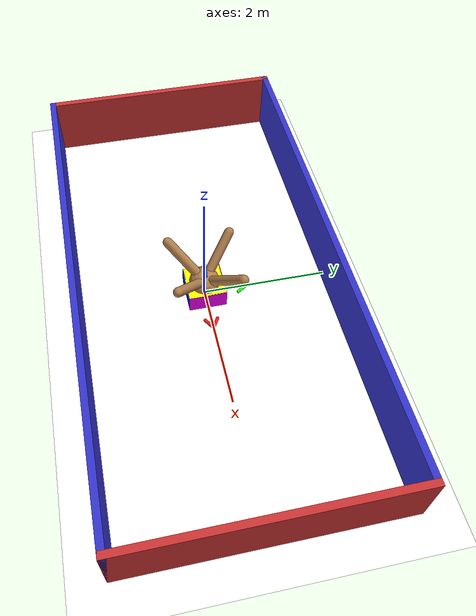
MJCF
<mujoco model="dex-gripper">
  <asset>
    <texture name="skybox" type="skybox" builtin="gradient" rgb1=".2 .3 .4" rgb2="0 0 0" width="800" height="800" mark="random" markrgb="1 1 1"/>
    <texture name="grid" type="2d" builtin="checker" rgb1=".2 .1 .2" rgb2=".3 .2 .3" width="300" height="300" mark="edge" markrgb=".3 .2 .3"/>
    <material name="grid" texture="grid" texrepeat="1 1" texuniform="true" reflectance=".2"/>
    <material name="self" rgba=".7 .5 .3 1"/>
  </asset>
  <visual>
    <headlight ambient=".4 .4 .4" diffuse=".8 .8 .8" specular="0.1 0.1 0.1"/>
    <map znear=".001"/>
    <quality shadowsize="16384"/>
  </visual>
  <compiler coordinate="local" angle="degree" inertiafromgeom="true"/>
  <option integrator="RK4" timestep="0.01"/>
  <default>
    <joint armature="1" damping="1" limited="true"/>
    <geom conaffinity="0" condim="3" density="5.0" friction="1 0.5 0.5" margin="0.01" rgba=".7 .5 .3 1"/>
  </default>
  <worldbody>
    <light cutoff="100" diffuse="1 1 1" dir="0.3 0 -1.3" directional="true" exponent="1" pos="-30 0 130" specular=".1 .1 .1"/>
    <geom conaffinity="1" condim="3" name="floor" pos="0 0 0" rgba="1 1 1 1" size="200 200 .125" type="plane" material="grid"/>
    <!-- Fixed gripper base: no root slide joints anymore -->
    <body name="0" pos="0 0 0.3" gravcomp="1">
      <camera name="track" mode="fixed" pos="0 10 5" quat="0 0 0.547 0.892"/>
      <geom pos="0 0 0" size="0.260357 0.24242 0.18115" type="ellipsoid"/>
      <!-- Arm 1: flipped upward -->
      <body name="1" pos="0 0 0" gravcomp="1">
        <joint axis="-0.707107 0.707107 0" name="1_joint" pos="0 0 0" range="-45 45" type="hinge" damping="0"/>
        <geom fromto="-0.054387 -0.057052 -0.057147 0.475851 0.499169 0.5" size="0.081419 0.081419 0.081419" type="capsule"/>
      </body>
      <!-- Arm 2: flipped upward -->
      <body name="2" pos="0 0 0" gravcomp="1">
        <joint axis="-0.707107 -0.707107 0" name="2_joint" pos="0 0 0" range="-45 45" type="hinge" damping="0"/>
        <geom fromto="0.057467 -0.057449 -0.057534 -0.499421 0.499265 0.5" size="0.076037 0.076037 0.076037" type="capsule"/>
      </body>
      <!-- Arm 3: flipped upward -->
      <body name="3" pos="0 0 0" gravcomp="1">
        <joint axis="0.707107 -0.707107 0" name="3_joint" pos="0 0 0" range="-45 45" type="hinge" damping="0"/>
        <geom fromto="0.052252 0.05227 -0.053696 -0.486549 -0.486724 0.5" size="0.078141 0.078141 0.078141" type="capsule"/>
      </body>
      <!-- Arm 4: flipped upward -->
      <body name="4" pos="0 0 0" gravcomp="1">
        <joint axis="0.707107 0.707107 0" name="4_joint" pos="0 0 0" range="-45 45" type="hinge" damping="0"/>
        <geom fromto="-0.061399 0.061389 -0.06145 0.499588 -0.499504 0.5" size="0.076 0.076 0.076" type="capsule"/>
      </body>
    </body>
    <!-- Box starts above the gripper -->
    <body name="box" pos="0 0 0">
      <freejoint name="box_joint"/>
      <!-- Top (Yellow) -->
      <geom name="box_top" type="box" pos="0 0 0.295" size="0.3 0.3 0.005" rgba="1 1 0 1" density="10" friction="2.5 0.1 0.05" contype="1" conaffinity="1"/>
      <!-- Bottom (White) -->
      <geom name="box_bottom" type="box" pos="0 0 -0.295" size="0.3 0.3 0.005" rgba="1 1 1 1" density="10" friction="2.5 0.1 0.05" contype="1" conaffinity="1"/>
      <!-- Front (Red) -->
      <geom name="box_front" type="box" pos="0 0.295 0" size="0.3 0.005 0.3" rgba="1 0 0 1" density="10" friction="2.5 0.1 0.05" contype="1" conaffinity="1"/>
      <!-- Back (Blue) -->
      <geom name="box_back" type="box" pos="0 -0.295 0" size="0.3 0.005 0.3" rgba="0 0 1 1" density="10" friction="2.5 0.1 0.05" contype="1" conaffinity="1"/>
      <!-- Left (Green) -->
      <geom name="box_left" type="box" pos="-0.295 0 0" size="0.005 0.3 0.3" rgba="0 1 0 1" density="10" friction="2.5 0.1 0.05" contype="1" conaffinity="1"/>
      <!-- Right (Magenta) -->
      <geom name="box_right" type="box" pos="0.295 0 0" size="0.005 0.3 0.3" rgba="1 0 1 1" density="10" friction="2.5 0.1 0.05" contype="1" conaffinity="1"/>
    </body>
    <!-- RGB arrows visualize the target orientation and never participate in collisions. -->
    <body name="goal_orientation_frame" pos="0 0 0">
      <!-- Goal X axis (red). -->
      <geom name="goal_axis_x_shaft" type="capsule" fromto="0 0 0 0.7 0 0" size="0.018" rgba="1 0.1 0.1 0.9" contype="0" conaffinity="0"/>
      <geom name="goal_axis_x_head_pos" type="capsule" fromto="0.7 0 0 0.54 0.1 0" size="0.025" rgba="1 0.1 0.1 0.9" contype="0" conaffinity="0"/>
      <geom name="goal_axis_x_head_neg" type="capsule" fromto="0.7 0 0 0.54 -0.1 0" size="0.025" rgba="1 0.1 0.1 0.9" contype="0" conaffinity="0"/>
      <!-- Goal Y axis (green). -->
      <geom name="goal_axis_y_shaft" type="capsule" fromto="0 0 0 0 0.7 0" size="0.018" rgba="0.1 1 0.1 0.9" contype="0" conaffinity="0"/>
      <geom name="goal_axis_y_head_pos" type="capsule" fromto="0 0.7 0 0.1 0.54 0" size="0.025" rgba="0.1 1 0.1 0.9" contype="0" conaffinity="0"/>
      <geom name="goal_axis_y_head_neg" type="capsule" fromto="0 0.7 0 -0.1 0.54 0" size="0.025" rgba="0.1 1 0.1 0.9" contype="0" conaffinity="0"/>
      <!-- Goal Z axis (blue). -->
      <geom name="goal_axis_z_shaft" type="capsule" fromto="0 0 0 0 0 0.7" size="0.018" rgba="0.1 0.3 1 0.9" contype="0" conaffinity="0"/>
      <geom name="goal_axis_z_head_pos" type="capsule" fromto="0 0 0.7 0.1 0 0.54" size="0.025" rgba="0.1 0.3 1 0.9" contype="0" conaffinity="0"/>
      <geom name="goal_axis_z_head_neg" type="capsule" fromto="0 0 0.7 -0.1 0 0.54" size="0.025" rgba="0.1 0.3 1 0.9" contype="0" conaffinity="0"/>
    </body>
    <body name="box_walls" pos="0 0 0">
      <geom name="wall_left" type="box" pos="-4.0 0 0.5" size="0.05 2.05 0.5" rgba="0.8 0.2 0.2 1" contype="1" conaffinity="1"/>
      <geom name="wall_right" type="box" pos="4.0 0 0.5" size="0.05 2.05 0.5" rgba="0.8 0.2 0.2 1" contype="1" conaffinity="1"/>
      <geom name="wall_front" type="box" pos="0 2.0 0.5" size="4.05 0.05 0.5" rgba="0.2 0.2 0.8 1" contype="1" conaffinity="1"/>
      <geom name="wall_back" type="box" pos="0 -2.0 0.5" size="4.05 0.05 0.5" rgba="0.2 0.2 0.8 1" contype="1" conaffinity="1"/>
    </body>
  </worldbody>
  <actuator>
    <!-- Only the finger joints remain actuated -->
    <motor ctrllimited="true" ctrlrange="-1.0 1.0" joint="1_joint" gear="36.28323" name="1_joint"/>
    <motor ctrllimited="true" ctrlrange="-1.0 1.0" joint="2_joint" gear="46.510956" name="2_joint"/>
    <motor ctrllimited="true" ctrlrange="-1.0 1.0" joint="3_joint" gear="72.180147" name="3_joint"/>
    <motor ctrllimited="true" ctrlrange="-1.0 1.0" joint="4_joint" gear="49.990459" name="4_joint"/>
  </actuator>
</mujoco>
